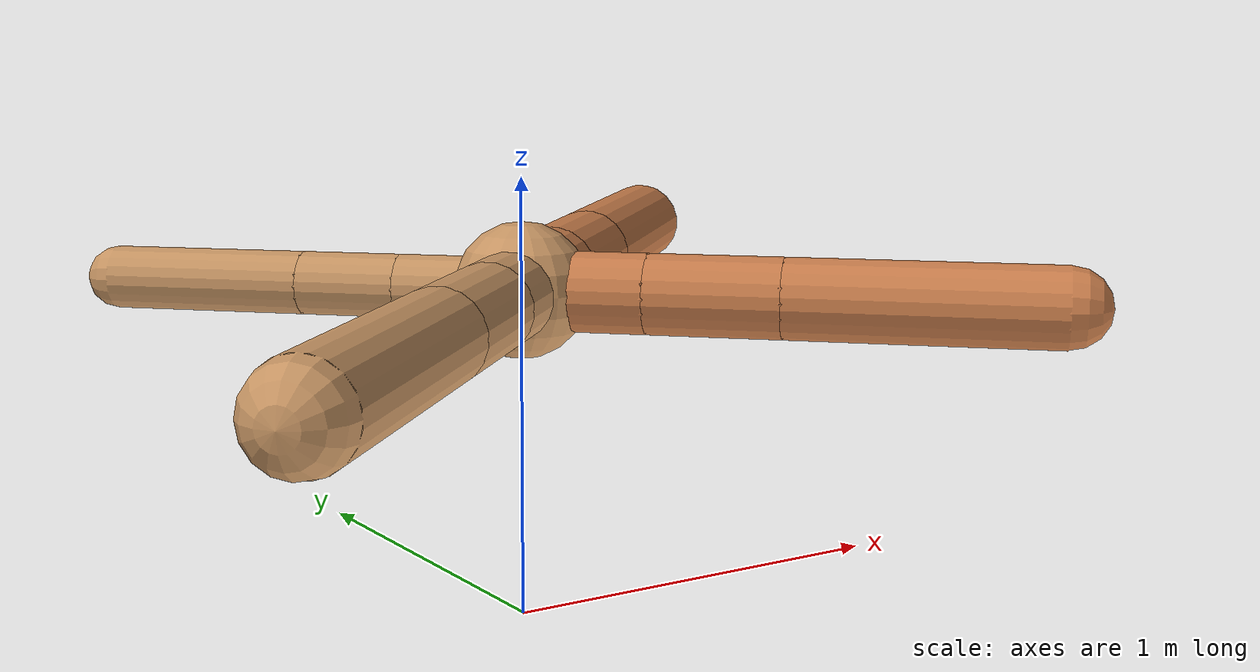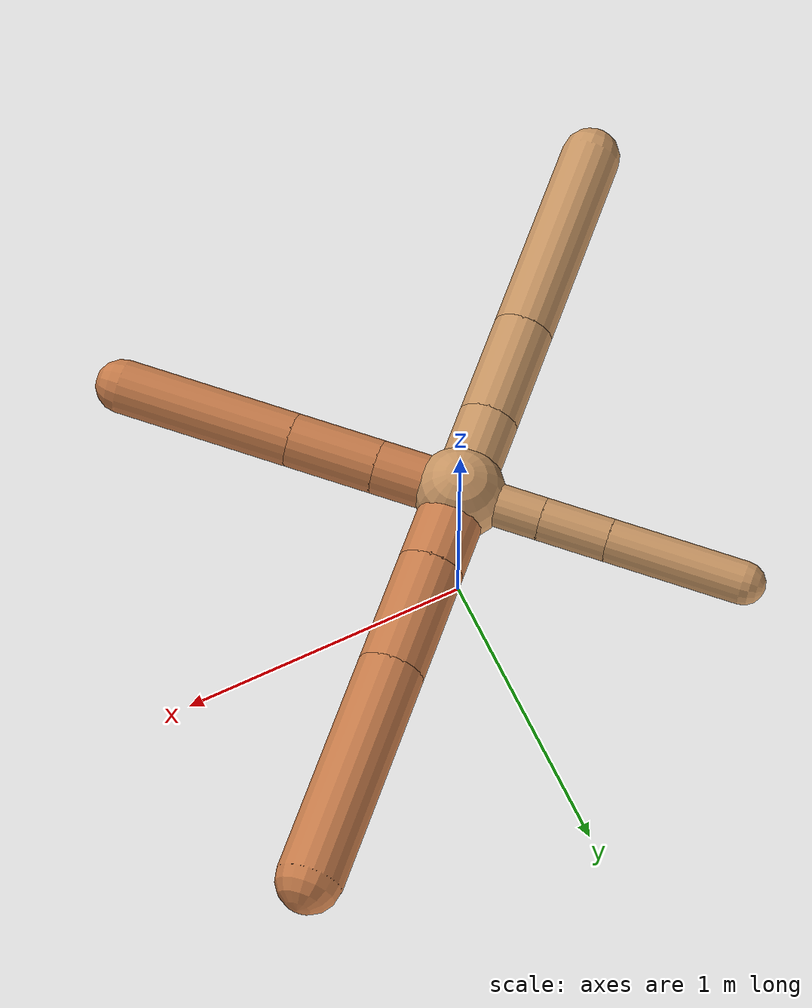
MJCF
<?xml version="1.0" ?>
<mujoco model="ant">

	<compiler angle="degree" coordinate="local" inertiafromgeom="true"/>

	<option integrator="RK4" timestep="0.01"/>

	<custom>

		<numeric data="0.0 0.0 0.55 1.0 0.0 0.0 0.0 0.0 1.0 0.0 -1.0 0.0 -1.0 0.0 1.0" name="init_qpos"/>

	</custom>

	<default>

		<joint armature="1" damping="1" limited="true"/>

		<geom conaffinity="0" condim="3" density="5.0" friction="1.5 0.1 0.1" margin="0.01" rgba="0.8 0.6 0.4 1"/>

	</default>

	<worldbody>

		<body name="torso" pos="0 0 0.75">

			<geom name="torso_geom" pos="0 0 0" size="0.15274729915005253" type="sphere"/>

			<!--joint armature="0" damping="0" limited="false" margin="0.01" name="root" pos="0 0 0" type="free"/-->

			<body name="front_left_leg" pos="0 0 0">

				<geom fromto="0 0 0 0.2 0.2 0" name="aux_1_geom" size="0.10958539332723351" type="capsule" rgba=".8 .5 .3 1"/>

				<body name="aux_1" pos="0.2 0.2 0">

					<joint axis="0 0 1" name="hip_1" pos="0.0 0.0 0.0" range="-40 40" type="hinge"/>

					<geom fromto="0 0 0 0.2696938815652449 0.2696938815652449 0" name="left_leg_geom" size="0.10958539332723351" type="capsule" rgba=".8 .5 .3 1"/>

					<body pos="0.2696938815652449 0.2696938815652449 0" name="front_left_foot">

						<joint axis="-1 1 0" name="ankle_1" pos="0.0 0.0 0.0" range="30 100" type="hinge"/>

						<geom fromto="0 0 0 0.5393877631304898 0.5393877631304898 0" name="left_ankle_geom" size="0.10958539332723351" type="capsule" rgba=".8 .5 .3 1"/>

					</body>

				</body>

			</body>

			<body name="front_right_leg" pos="0 0 0">

				<geom fromto="0 0 0 -0.2 0.2 0" name="aux_2_geom" size="0.07157751329474174" type="capsule"/>

				<body name="aux_2" pos="-0.2 0.2 0">

					<joint axis="0 0 1" name="hip_2" pos="0.0 0.0 0.0" range="-40 40" type="hinge"/>

					<geom fromto="0 0 0 -0.16172439619117496 0.16172439619117496 0" name="right_leg_geom" size="0.07157751329474174" type="capsule"/>

					<body pos="-0.16172439619117496 0.16172439619117496 0" name="front_right_foot">

						<joint axis="1 1 0" name="ankle_2" pos="0.0 0.0 0.0" range="-100 -30" type="hinge"/>

						<geom fromto="0 0 0 -0.3234487923823499 0.3234487923823499 0" name="right_ankle_geom" size="0.07157751329474174" type="capsule"/>

					</body>

				</body>

			</body>

			<body name="left_back_leg" pos="0 0 0">

				<geom fromto="0 0 0 -0.2 -0.2 0" name="aux_3_geom" size="0.09917484213758475" type="capsule"/>

				<body name="aux_3" pos="-0.2 -0.2 0">

					<joint axis="0 0 1" name="hip_3" pos="0.0 0.0 0.0" range="-40 40" type="hinge"/>

					<geom fromto="0 0 0 -0.24800384294423727 -0.24800384294423727 0" name="back_leg_geom" size="0.09917484213758475" type="capsule"/>

					<body pos="-0.24800384294423727 -0.24800384294423727 0" name="left_back_foot">

						<joint axis="-1 1 0" name="ankle_3" pos="0.0 0.0 0.0" range="-100 -30" type="hinge"/>

						<geom fromto="0 0 0 -0.49600768588847455 -0.49600768588847455 0" name="third_ankle_geom" size="0.09917484213758475" type="capsule"/>

					</body>

				</body>

			</body>

			<body name="right_back_leg" pos="0 0 0">

				<geom fromto="0 0 0 0.2 -0.2 0" name="aux_4_geom" size="0.08951208594214594" type="capsule" rgba=".8 .5 .3 1"/>

				<body name="aux_4" pos="0.2 -0.2 0">

					<joint axis="0 0 1" name="hip_4" pos="0.0 0.0 0.0" range="-40 40" type="hinge"/>

					<geom fromto="0 0 0 0.21010878007171147 -0.21010878007171147 0" name="rightback_leg_geom" size="0.08951208594214594" type="capsule" rgba=".8 .5 .3 1"/>

					<body pos="0.21010878007171147 -0.21010878007171147 0" name="right_back_foot">

						<joint axis="1 1 0" name="ankle_4" pos="0.0 0.0 0.0" range="30 100" type="hinge"/>

						<geom fromto="0 0 0 0.42021756014342293 -0.42021756014342293 0" name="fourth_ankle_geom" size="0.08951208594214594" type="capsule" rgba=".8 .5 .3 1"/>

					</body>

				</body>

			</body>

		</body>

	</worldbody>

	<actuator>

		<motor ctrllimited="true" ctrlrange="-1.0 1.0" joint="hip_4" gear="150"/>

		<motor ctrllimited="true" ctrlrange="-1.0 1.0" joint="ankle_4" gear="150"/>

		<motor ctrllimited="true" ctrlrange="-1.0 1.0" joint="hip_1" gear="150"/>

		<motor ctrllimited="true" ctrlrange="-1.0 1.0" joint="ankle_1" gear="150"/>

		<motor ctrllimited="true" ctrlrange="-1.0 1.0" joint="hip_2" gear="150"/>

		<motor ctrllimited="true" ctrlrange="-1.0 1.0" joint="ankle_2" gear="150"/>

		<motor ctrllimited="true" ctrlrange="-1.0 1.0" joint="hip_3" gear="150"/>

		<motor ctrllimited="true" ctrlrange="-1.0 1.0" joint="ankle_3" gear="150"/>

	</actuator>

</mujoco>
